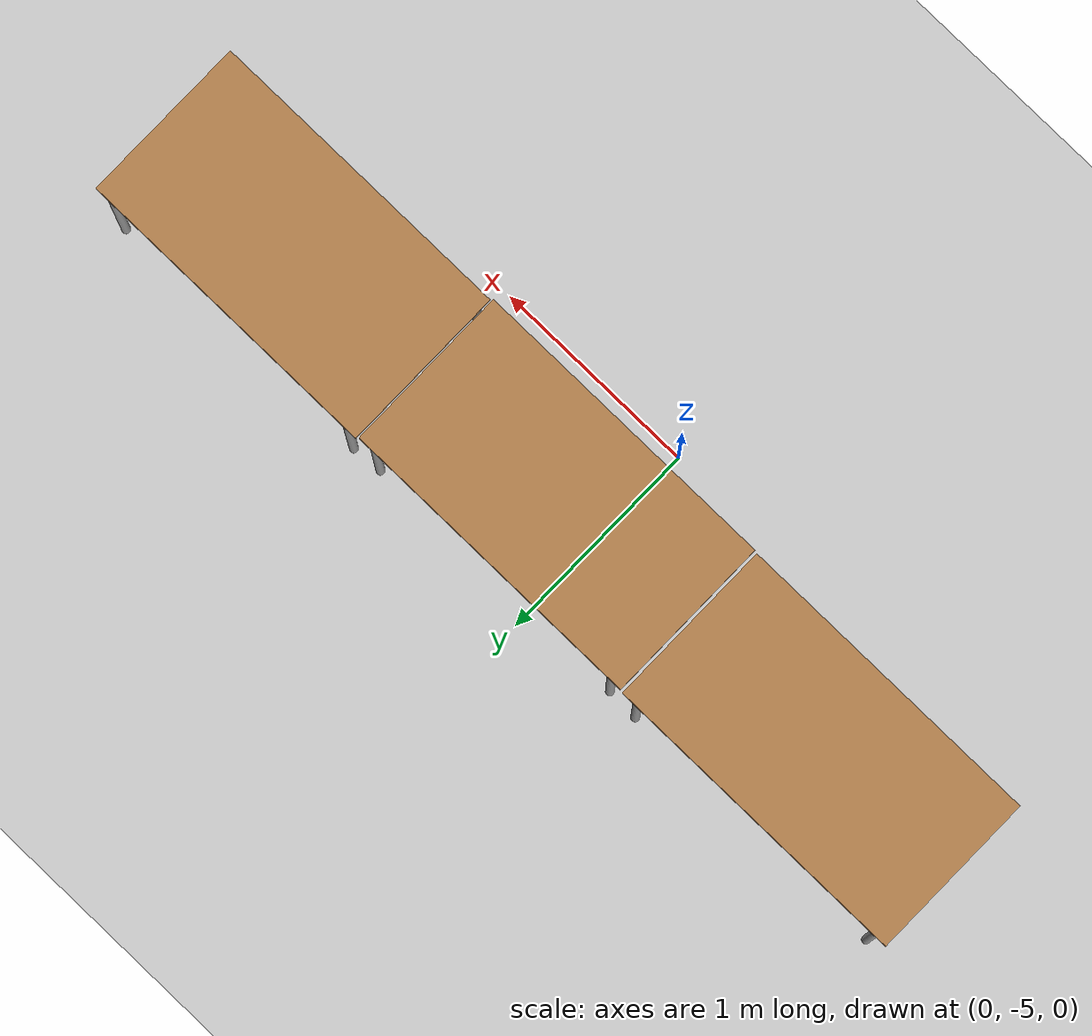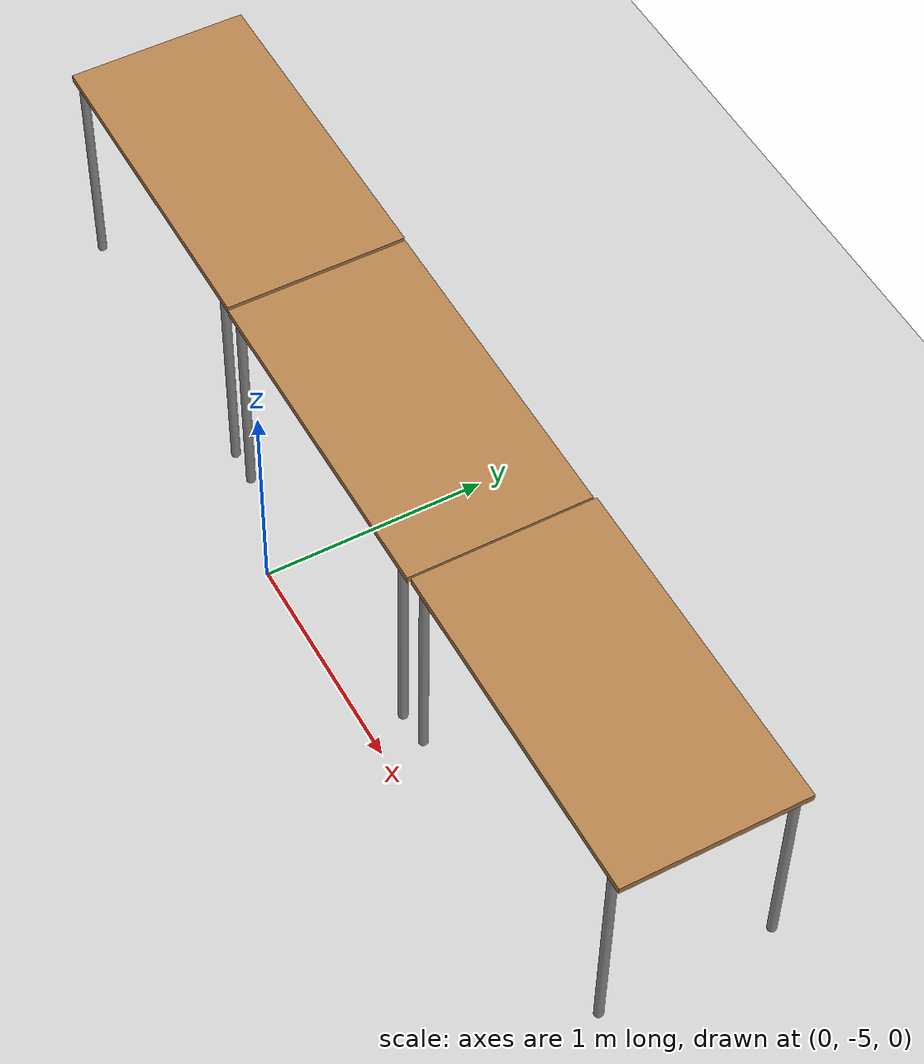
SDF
<sdf version="1.7">
 <world name="default">
  <light name="sun" type="directional">
   <cast_shadows>0</cast_shadows>
   <pose>0 0 10 0 -0 0</pose>
   <diffuse>0.8 0.8 0.8 1</diffuse>
   <specular>0.2 0.2 0.2 1</specular>
   <attenuation>
    <range>1000</range>
    <constant>0.9</constant>
    <linear>0.01</linear>
    <quadratic>0.001</quadratic>
   </attenuation>
   <direction>-0.5 0.1 -0.9</direction>
   <spot><inner_angle>0</inner_angle><outer_angle>0</outer_angle><falloff>0</falloff></spot>
  </light>
  <physics name="default_physics" default="0" type="ode">
   <ode>
    <solver>
     <type>quick</type>
     <iters>10</iters>
     <sor>1.3</sor>
     <use_dynamic_moi_rescaling>0</use_dynamic_moi_rescaling>
    </solver>
    <constraints>
     <cfm>0</cfm>
     <erp>0.2</erp>
     <contact_max_correcting_vel>100</contact_max_correcting_vel>
     <contact_surface_layer>0.001</contact_surface_layer>
    </constraints>
   </ode>
   <max_step_size>0.004</max_step_size>
   <real_time_factor>1</real_time_factor>
   <real_time_update_rate>250</real_time_update_rate>
  </physics>
  <gravity>0 0 -9.8066</gravity>
  <magnetic_field>6e-06 2.3e-05 -4.2e-05</magnetic_field>
  <atmosphere type="adiabatic"/>
  <scene>
   <ambient>0.4 0.4 0.4 1</ambient>
   <background>0.7 0.7 0.7 1</background>
   <sky><material>Gazebo/CloudySky</material></sky>
   <shadows>0</shadows>
  </scene>
  <audio><device>default</device></audio>
  <spherical_coordinates>
   <surface_model>EARTH_WGS84</surface_model>
   <latitude_deg>0</latitude_deg>
   <longitude_deg>0</longitude_deg>
   <elevation>0</elevation>
   <heading_deg>0</heading_deg>
  </spherical_coordinates>
  <model name="ground_plane">
   <static>1</static>
   <link name="link">
    <collision name="collision">
     <geometry><plane><normal>0 0 1</normal><size>100 100</size></plane></geometry>
     <surface>
      <contact><collide_bitmask>65535</collide_bitmask></contact>
      <friction><ode><mu>100</mu><mu2>50</mu2></ode></friction>
     </surface>
    </collision>
    <visual name="visual">
     <cast_shadows>0</cast_shadows>
     <geometry><plane><normal>0 0 1</normal><size>100 100</size></plane></geometry>
     <material>
      <script><uri>file://media/materials/scripts/gazebo.material</uri><name>Gazebo/Grey</name></script>
     </material>
    </visual>
   </link>
   <pose>0 0 -0.05 0 -0 0</pose>
  </model>
  <model name="Table">
   <static>1</static>
   <link name="link">
    <collision name="surface">
     <pose>0 0 1 0 -0 0</pose>
     <geometry><box><size>1.5 0.8 0.03</size></box></geometry>
     <surface><friction><ode><mu>0.6</mu><mu2>0.6</mu2></ode></friction></surface>
    </collision>
    <visual name="visual1">
     <pose>0 0 1 0 -0 0</pose>
     <geometry><box><size>1.5 0.8 0.03</size></box></geometry>
     <material>
      <diffuse>1 1 1 1</diffuse>
      <script><uri>file://media/materials/scripts/gazebo.material</uri><name>Gazebo/Wood</name></script>
      <pbr><metal><albedo_map>model://Table/Table_Diffuse.jpg</albedo_map></metal></pbr>
     </material>
    </visual>
    <collision name="front_left_leg">
     <pose>0.68 0.38 0.5 0 -0 0</pose>
     <geometry><cylinder><radius>0.02</radius><length>1</length></cylinder></geometry>
    </collision>
    <visual name="front_left_leg">
     <pose>0.68 0.38 0.5 0 -0 0</pose>
     <geometry><cylinder><radius>0.02</radius><length>1</length></cylinder></geometry>
     <material>
      <diffuse>0.5 0.5 0.5 1</diffuse>
      <script><uri>file://media/materials/scripts/gazebo.material</uri><name>Gazebo/Grey</name></script>
     </material>
    </visual>
    <collision name="front_right_leg">
     <pose>0.68 -0.38 0.5 0 -0 0</pose>
     <geometry><cylinder><radius>0.02</radius><length>1</length></cylinder></geometry>
    </collision>
    <visual name="front_right_leg">
     <pose>0.68 -0.38 0.5 0 -0 0</pose>
     <geometry><cylinder><radius>0.02</radius><length>1</length></cylinder></geometry>
     <material>
      <diffuse>0.5 0.5 0.5 1</diffuse>
      <script><uri>file://media/materials/scripts/gazebo.material</uri><name>Gazebo/Grey</name></script>
     </material>
    </visual>
    <collision name="back_right_leg">
     <pose>-0.68 -0.38 0.5 0 -0 0</pose>
     <geometry><cylinder><radius>0.02</radius><length>1</length></cylinder></geometry>
    </collision>
    <visual name="back_right_leg">
     <pose>-0.68 -0.38 0.5 0 -0 0</pose>
     <geometry><cylinder><radius>0.02</radius><length>1</length></cylinder></geometry>
     <material>
      <diffuse>0.5 0.5 0.5 1</diffuse>
      <script><uri>file://media/materials/scripts/gazebo.material</uri><name>Gazebo/Grey</name></script>
     </material>
    </visual>
    <collision name="back_left_leg">
     <pose>-0.68 0.38 0.5 0 -0 0</pose>
     <geometry><cylinder><radius>0.02</radius><length>1</length></cylinder></geometry>
    </collision>
    <visual name="back_left_leg">
     <pose>-0.68 0.38 0.5 0 -0 0</pose>
     <geometry><cylinder><radius>0.02</radius><length>1</length></cylinder></geometry>
     <material>
      <diffuse>0.5 0.5 0.5 1</diffuse>
      <script><uri>file://media/materials/scripts/gazebo.material</uri><name>Gazebo/Grey</name></script>
     </material>
    </visual>
   </link>
   <pose>1.70684 -4.44626 0 0 -0 0</pose>
  </model>
  <model name="Table_0">
   <static>1</static>
   <link name="link">
    <collision name="surface">
     <pose>0 0 1 0 -0 0</pose>
     <geometry><box><size>1.5 0.8 0.03</size></box></geometry>
     <surface><friction><ode><mu>0.6</mu><mu2>0.6</mu2></ode></friction></surface>
    </collision>
    <visual name="visual1">
     <pose>0 0 1 0 -0 0</pose>
     <geometry><box><size>1.5 0.8 0.03</size></box></geometry>
     <material>
      <diffuse>1 1 1 1</diffuse>
      <script><uri>file://media/materials/scripts/gazebo.material</uri><name>Gazebo/Wood</name></script>
      <pbr><metal><albedo_map>model://Table/Table_Diffuse.jpg</albedo_map></metal></pbr>
     </material>
    </visual>
    <collision name="front_left_leg">
     <pose>0.68 0.38 0.5 0 -0 0</pose>
     <geometry><cylinder><radius>0.02</radius><length>1</length></cylinder></geometry>
    </collision>
    <visual name="front_left_leg">
     <pose>0.68 0.38 0.5 0 -0 0</pose>
     <geometry><cylinder><radius>0.02</radius><length>1</length></cylinder></geometry>
     <material>
      <diffuse>0.5 0.5 0.5 1</diffuse>
      <script><uri>file://media/materials/scripts/gazebo.material</uri><name>Gazebo/Grey</name></script>
     </material>
    </visual>
    <collision name="front_right_leg">
     <pose>0.68 -0.38 0.5 0 -0 0</pose>
     <geometry><cylinder><radius>0.02</radius><length>1</length></cylinder></geometry>
    </collision>
    <visual name="front_right_leg">
     <pose>0.68 -0.38 0.5 0 -0 0</pose>
     <geometry><cylinder><radius>0.02</radius><length>1</length></cylinder></geometry>
     <material>
      <diffuse>0.5 0.5 0.5 1</diffuse>
      <script><uri>file://media/materials/scripts/gazebo.material</uri><name>Gazebo/Grey</name></script>
     </material>
    </visual>
    <collision name="back_right_leg">
     <pose>-0.68 -0.38 0.5 0 -0 0</pose>
     <geometry><cylinder><radius>0.02</radius><length>1</length></cylinder></geometry>
    </collision>
    <visual name="back_right_leg">
     <pose>-0.68 -0.38 0.5 0 -0 0</pose>
     <geometry><cylinder><radius>0.02</radius><length>1</length></cylinder></geometry>
     <material>
      <diffuse>0.5 0.5 0.5 1</diffuse>
      <script><uri>file://media/materials/scripts/gazebo.material</uri><name>Gazebo/Grey</name></script>
     </material>
    </visual>
    <collision name="back_left_leg">
     <pose>-0.68 0.38 0.5 0 -0 0</pose>
     <geometry><cylinder><radius>0.02</radius><length>1</length></cylinder></geometry>
    </collision>
    <visual name="back_left_leg">
     <pose>-0.68 0.38 0.5 0 -0 0</pose>
     <geometry><cylinder><radius>0.02</radius><length>1</length></cylinder></geometry>
     <material>
      <diffuse>0.5 0.5 0.5 1</diffuse>
      <script><uri>file://media/materials/scripts/gazebo.material</uri><name>Gazebo/Grey</name></script>
     </material>
    </visual>
   </link>
   <pose>0.19852 -4.45684 0 0 -0 0</pose>
  </model>
  <model name="Table_1">
   <static>1</static>
   <link name="link">
    <collision name="surface">
     <pose>0 0 1 0 -0 0</pose>
     <geometry><box><size>1.5 0.8 0.03</size></box></geometry>
     <surface><friction><ode><mu>0.6</mu><mu2>0.6</mu2></ode></friction></surface>
    </collision>
    <visual name="visual1">
     <pose>0 0 1 0 -0 0</pose>
     <geometry><box><size>1.5 0.8 0.03</size></box></geometry>
     <material>
      <diffuse>1 1 1 1</diffuse>
      <script><uri>file://media/materials/scripts/gazebo.material</uri><name>Gazebo/Wood</name></script>
      <pbr><metal><albedo_map>model://Table/Table_Diffuse.jpg</albedo_map></metal></pbr>
     </material>
    </visual>
    <collision name="front_left_leg">
     <pose>0.68 0.38 0.5 0 -0 0</pose>
     <geometry><cylinder><radius>0.02</radius><length>1</length></cylinder></geometry>
    </collision>
    <visual name="front_left_leg">
     <pose>0.68 0.38 0.5 0 -0 0</pose>
     <geometry><cylinder><radius>0.02</radius><length>1</length></cylinder></geometry>
     <material>
      <diffuse>0.5 0.5 0.5 1</diffuse>
      <script><uri>file://media/materials/scripts/gazebo.material</uri><name>Gazebo/Grey</name></script>
     </material>
    </visual>
    <collision name="front_right_leg">
     <pose>0.68 -0.38 0.5 0 -0 0</pose>
     <geometry><cylinder><radius>0.02</radius><length>1</length></cylinder></geometry>
    </collision>
    <visual name="front_right_leg">
     <pose>0.68 -0.38 0.5 0 -0 0</pose>
     <geometry><cylinder><radius>0.02</radius><length>1</length></cylinder></geometry>
     <material>
      <diffuse>0.5 0.5 0.5 1</diffuse>
      <script><uri>file://media/materials/scripts/gazebo.material</uri><name>Gazebo/Grey</name></script>
     </material>
    </visual>
    <collision name="back_right_leg">
     <pose>-0.68 -0.38 0.5 0 -0 0</pose>
     <geometry><cylinder><radius>0.02</radius><length>1</length></cylinder></geometry>
    </collision>
    <visual name="back_right_leg">
     <pose>-0.68 -0.38 0.5 0 -0 0</pose>
     <geometry><cylinder><radius>0.02</radius><length>1</length></cylinder></geometry>
     <material>
      <diffuse>0.5 0.5 0.5 1</diffuse>
      <script><uri>file://media/materials/scripts/gazebo.material</uri><name>Gazebo/Grey</name></script>
     </material>
    </visual>
    <collision name="back_left_leg">
     <pose>-0.68 0.38 0.5 0 -0 0</pose>
     <geometry><cylinder><radius>0.02</radius><length>1</length></cylinder></geometry>
    </collision>
    <visual name="back_left_leg">
     <pose>-0.68 0.38 0.5 0 -0 0</pose>
     <geometry><cylinder><radius>0.02</radius><length>1</length></cylinder></geometry>
     <material>
      <diffuse>0.5 0.5 0.5 1</diffuse>
      <script><uri>file://media/materials/scripts/gazebo.material</uri><name>Gazebo/Grey</name></script>
     </material>
    </visual>
   </link>
   <pose>-1.31587 -4.45176 0 0 -0 0</pose>
  </model>
 </world>
</sdf>
